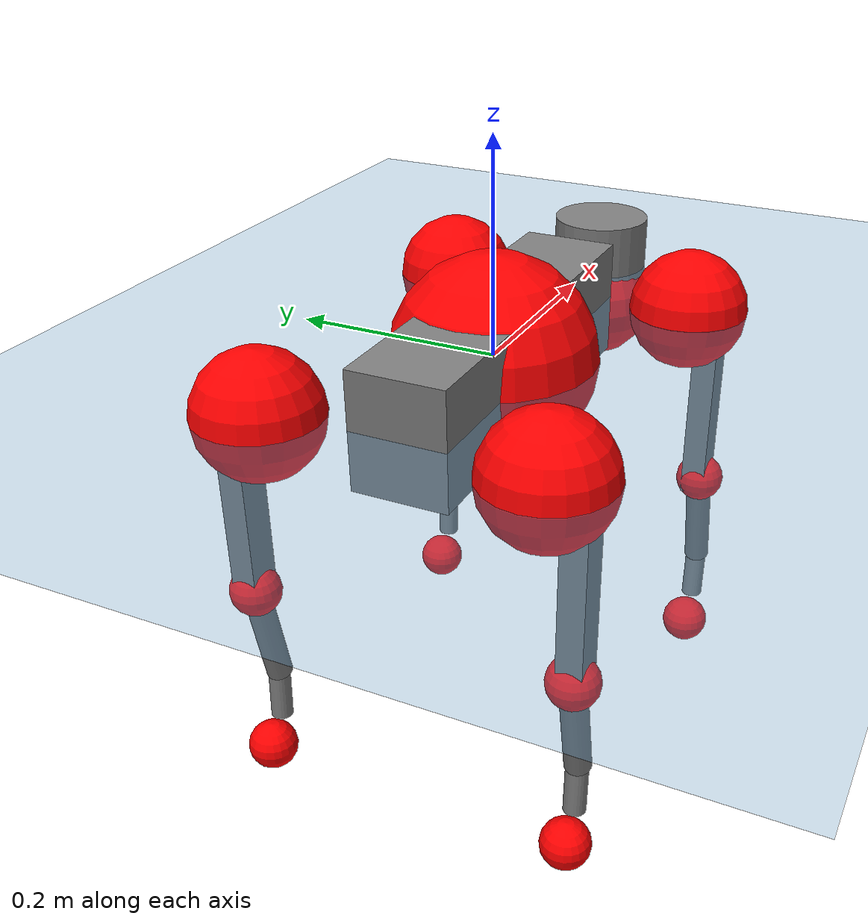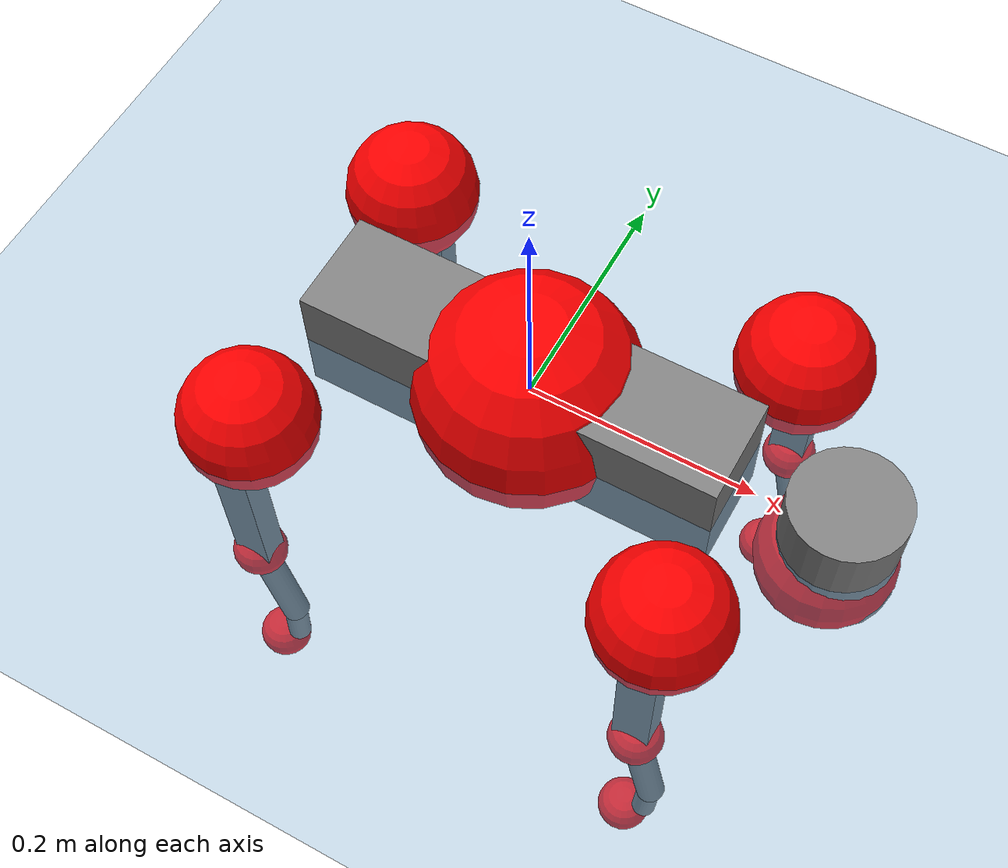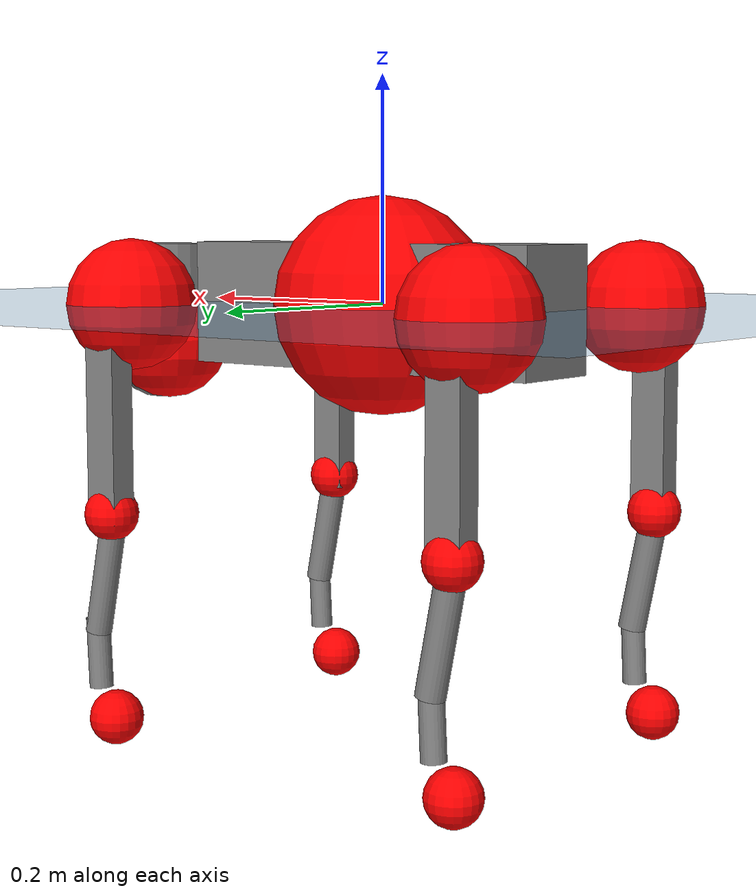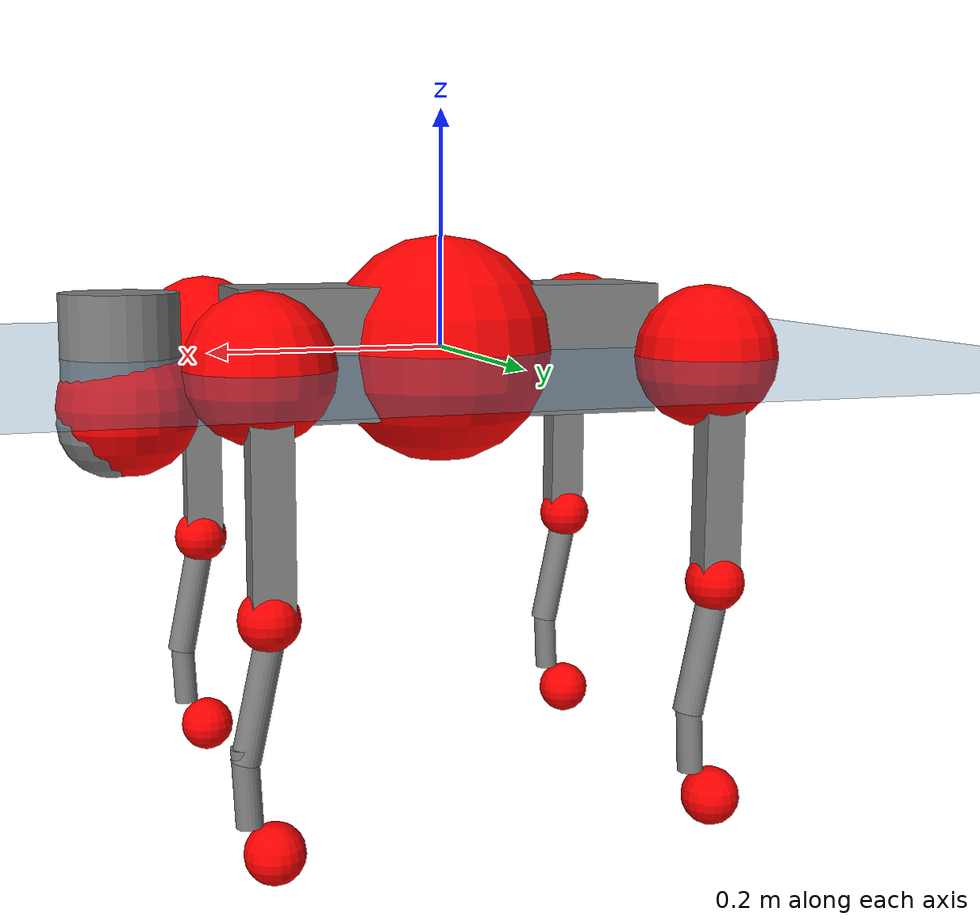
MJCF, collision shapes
<mujoco model="go2">
  <compiler angle="radian" assetdir="assets" balanceinertia="true" inertiafromgeom="false"/>

  <option timestep="0.005" density="1.2" viscosity="2e-05"/>

  <size nkey="1"/>

  <visual>
    <quality shadowsize="8192"/>
    <map shadowclip="0.5"/>
  </visual>

  <default>
    <default class="/">
      <geom contype="0" conaffinity="0" group="1" solref="-1000 -80"/>
      <site size="0.01 0.005 0.005" group="5"/>
      <general forcelimited="true" biastype="affine" gainprm="20" biasprm="0 -20 -0.5"/>
      <default class="go2">
        <joint armature="0.01" damping="0.01" frictionloss="0.2"/>
        <geom condim="1" margin="0.001"/>
        <default class="visual">
          <geom type="mesh" group="2"/>
        </default>
        <default class="collision">
          <geom group="3"/>
          <default class="foot">
            <geom size="0.022 0 0" condim="6" priority="1" friction="0.8 0.02 0.01" solimp="0.015 1 0.022"/>
          </default>
        </default>
        <default class="reward_collision_sphere">
          <geom group="5" rgba="1 0 0 1"/>
        </default>
      </default>
    </default>
  </default>

  <asset>
    <texture type="skybox" colorspace="auto" name="//unnamed_texture_0" builtin="gradient" rgb1="0.95 0.95 0.95" rgb2="0.95 0.95 0.95" width="100" height="600"/>
    <texture type="2d" colorspace="auto" name="texplane" builtin="checker" rgb1="0.345 0.575 0.748" rgb2="0.345 0.575 0.748" markrgb="1 1 1" width="512" height="512"/>
    <material name="MatPlane" class="/" texture="texplane" texuniform="true" texrepeat="2 2" specular="0.9"/>
    <material name="metal" class="/" rgba="0.9 0.95 0.95 1"/>
    <material name="black" class="/" rgba="0 0 0 1"/>
    <material name="white" class="/"/>
    <material name="gray" class="/" rgba="0.671705 0.692426 0.77427 1"/>
    <mesh name="base_0" class="/" file="base_0.obj"/>
    <mesh name="base_1" class="/" file="base_1.obj"/>
    <mesh name="base_2" class="/" file="base_2.obj"/>
    <mesh name="base_3" class="/" file="base_3.obj"/>
    <mesh name="base_4" class="/" file="base_4.obj"/>
    <mesh name="hip_0" class="/" file="hip_0.obj"/>
    <mesh name="hip_1" class="/" file="hip_1.obj"/>
    <mesh name="thigh_0" class="/" file="thigh_0.obj"/>
    <mesh name="thigh_1" class="/" file="thigh_1.obj"/>
    <mesh name="thigh_mirror_0" class="/" file="thigh_mirror_0.obj"/>
    <mesh name="thigh_mirror_1" class="/" file="thigh_mirror_1.obj"/>
    <mesh name="calf_0" class="/" file="calf_0.obj"/>
    <mesh name="calf_1" class="/" file="calf_1.obj"/>
    <mesh name="calf_mirror_0" class="/" file="calf_mirror_0.obj"/>
    <mesh name="calf_mirror_1" class="/" file="calf_mirror_1.obj"/>
    <mesh name="foot" class="/" file="foot.obj"/>
  </asset>

  <worldbody>
    <geom name="floor" class="/" size="100 100 0.125" type="plane" group="0" material="MatPlane"/>
    <light name="toplight_shadow" class="/" pos="0 0 5" dir="0.0990148 0.0990148 -0.990148" type="directional" ambient="0.04 0.04 0.04" diffuse="0.55 0.55 0.55" specular="0.12 0.12 0.12"/>
    <light name="toplight_fill" class="/" pos="0 0 5" dir="0.0990148 0.0990148 -0.990148" type="directional" castshadow="false" ambient="0.04 0.04 0.04" diffuse="0.3 0.3 0.3" specular="0.08 0.08 0.08"/>
    <body name="trunk" childclass="go2" pos="0.000182096 -0.0001216 -0.0015778" quat="1 2.0791e-05 2.48636e-05 -4.39894e-05">
      <inertial pos="0.0178235 -0.00260387 -0.00490696" quat="-0.00417801 0.71304 -0.00289382 0.701104" mass="6.34133" diaginertia="0.0858211 0.160028 0.0124972"/>
      <joint name="//unnamed_joint_0" type="free" armature="0" damping="0" frictionloss="0"/>
      <geom name="//unnamed_geom_1" class="visual" material="black" mesh="base_0"/>
      <geom name="//unnamed_geom_2" class="visual" material="black" mesh="base_1"/>
      <geom name="//unnamed_geom_3" class="visual" material="black" mesh="base_2"/>
      <geom name="//unnamed_geom_4" class="visual" material="white" mesh="base_3"/>
      <geom name="//unnamed_geom_5" class="visual" material="gray" mesh="base_4"/>
      <geom name="trunk_1" class="collision" size="0.182904 0.0454585 0.0554254" type="box"/>
      <geom name="trunk_2" class="collision" size="0.0486188 0.0437569" pos="0.271159 0 0.00869125" type="cylinder"/>
      <geom name="trunk_3" class="collision" size="0.0457016" pos="0.278771 0 -0.0521475"/>
      <geom name="//unnamed_geom_9" class="reward_collision_sphere" size="0.0972375"/>
      <geom name="//unnamed_geom_10" class="reward_collision_sphere" size="0.0583425" pos="0.266402 0 -0.0391106"/>
      <site name="imu" pos="-0.0376855 0.00227163 0.0492581" size="0.00972375"/>
      <camera name="track" pos="0 -2.19313 0" quat="0.707107 0.707107 0 0" mode="trackcom"/>
      <camera name="ego_camera" pos="0.296848 0 0.0391106" quat="-0.5 -0.5 0.5 0.5"/>
      <body name="FL_hip" pos="0.182801 0.0519665 0.000866386" quat="1 -2.01253e-05 9.03704e-06 -7.13276e-06">
        <inertial pos="-0.00255049 0.00223721 -0.000596867" quat="0.494763 0.496921 0.50747 0.500753" mass="0.599088" diaginertia="0.000662001 0.00093937 0.000233805"/>
        <joint name="FL_hip_joint" pos="0 0 0" axis="0.999911 -0.0106589 -0.00808488" stiffness="0.00712845" range="-1.05517 1.06228" armature="0.0110086" damping="0.00286721" frictionloss="0.202665"/>
        <geom name="//unnamed_geom_11" class="visual" material="metal" mesh="hip_0"/>
        <geom name="//unnamed_geom_12" class="visual" material="gray" mesh="hip_1"/>
        <geom name="//unnamed_geom_13" class="collision" size="0.0447293 0.0194475" pos="0 0.0877251 0" quat="0.707107 0.707107 0 0" type="cylinder"/>
        <geom name="//unnamed_geom_14" class="reward_collision_sphere" size="0.0583425" pos="0 0.0767595 0"/>
        <body name="FL_thigh" pos="-0.000160649 0.106536 0.00244797" quat="1 -0.000895745 4.20227e-05 -5.45458e-05">
          <inertial pos="-0.00401852 -0.0246552 -0.0257982" quat="0.830255 0.0812866 -0.02379 0.550911" mass="1.07888" diaginertia="0.00451402 0.00931288 0.000442708"/>
          <joint name="FL_thigh_joint" pos="0 0 0" axis="-0.00289983 0.999996 2.66622e-05" range="-1.5484 3.46737" armature="0.00938501" damping="0.0147605" frictionloss="0.17018"/>
          <geom name="//unnamed_geom_15" class="visual" material="metal" mesh="thigh_0"/>
          <geom name="//unnamed_geom_16" class="visual" material="gray" mesh="thigh_1"/>
          <geom name="//unnamed_geom_17" class="collision" size="0.103558 0.0119116 0.0165304" pos="0 0 -0.0925619" quat="0.707107 0 0.707107 0" type="box"/>
          <body name="FL_calf" pos="0.00169136 -0.0024372 -0.188135" quat="0.999999 -0.000472558 -0.000484578 -0.000891705">
            <inertial pos="0.00714074 -0.000300077 -0.121269" quat="0.713468 0.00172502 -0.00800069 0.70064" mass="0.218814" diaginertia="0.00115453 0.00230752 2.65008e-05"/>
            <joint name="FL_calf_joint" pos="0 0 0" axis="0.00134242 0.999997 0.00185738" stiffness="0.00223457" range="-2.75243 -0.846795" armature="0.00989981" damping="0" frictionloss="0.20613"/>
            <geom name="//unnamed_geom_18" class="visual" material="gray" mesh="calf_0"/>
            <geom name="//unnamed_geom_19" class="visual" material="black" mesh="calf_1"/>
            <geom name="FL_calf0" class="collision" size="0.0116685 0.0583425" pos="0.00761149 0 -0.0521475" quat="0.994493 0 -0.104807 0" type="cylinder"/>
            <geom name="//unnamed_geom_21" class="collision" size="0.0106961 0.0316022" pos="0.0190287 0 -0.128631" quat="0.999688 0 0.0249974 0" type="cylinder"/>
            <geom name="//unnamed_geom_22" class="visual" pos="0 0 -0.185124" quat="1 0 0 0" material="black" mesh="foot"/>
            <geom name="FL_foot" class="foot" size="0.0178628" pos="-0.00190287 0 -0.185124"/>
            <geom name="//unnamed_geom_24" class="reward_collision_sphere" size="0.0243094"/>
            <geom name="//unnamed_geom_25" class="reward_collision_sphere" size="0.0243094" pos="-0.00190287 0 -0.185124"/>
            <site name="FL_foot" class="foot" pos="-0.00190287 0 -0.185124" size="0.00972375"/>
          </body>
        </body>
      </body>
      <body name="FR_hip" pos="0.183365 -0.0502618 0.00117852" quat="1 -0.000117388 -6.78471e-05 -1.88948e-05">
        <inertial pos="-0.00253115 -0.00212942 -3.53625e-05" quat="0.498239 0.5054 0.499294 0.497025" mass="0.640363" diaginertia="0.00070018 0.000966759 0.000241748"/>
        <joint name="FR_hip_joint" pos="0 0 0" axis="0.999994 -0.00354824 -0.000308381" stiffness="0.00532755" range="-1.10115 1.04033" armature="0.00853605" damping="0.0181941" frictionloss="0.170069"/>
        <geom name="//unnamed_geom_26" class="visual" pos="0 1.98135e-09 8.49841e-08" quat="4.63268e-05 1 0 0" material="metal" mesh="hip_0"/>
        <geom name="//unnamed_geom_27" class="visual" pos="0 3.212e-09 -2.10198e-07" quat="4.63268e-05 1 0 0" material="gray" mesh="hip_1"/>
        <geom name="//unnamed_geom_28" class="collision" size="0.0447293 0.0194475" pos="0 -0.0877251 0" quat="0.707107 0.707107 0 0" type="cylinder"/>
        <geom name="//unnamed_geom_29" class="reward_collision_sphere" size="0.0583425" pos="0 -0.0767595 0"/>
        <body name="FR_thigh" pos="0.000538871 -0.101883 -0.000838126" quat="1 8.06325e-05 -6.80834e-05 -0.000293891">
          <inertial pos="-0.00346988 0.0241408 -0.0284536" quat="0.545868 -0.0284994 0.0796562 0.833589" mass="0.998821" diaginertia="0.00453167 0.00916678 0.000425125"/>
          <joint name="FR_thigh_joint" pos="0 0 0" axis="0.00888963 -0.99994 -0.00637287" stiffness="0.00287664" range="-3.43776 1.59822" armature="0.00987216" damping="0" frictionloss="0.219725"/>
          <geom name="//unnamed_geom_30" class="visual" material="metal" mesh="thigh_mirror_0"/>
          <geom name="//unnamed_geom_31" class="visual" material="gray" mesh="thigh_mirror_1"/>
          <geom name="//unnamed_geom_32" class="collision" size="0.103558 0.0119116 0.0165304" pos="0 0 -0.0925619" quat="0.707107 0 0.707107 0" type="box"/>
          <body name="FR_calf" pos="0.00232665 -0.00268389 -0.185453" quat="1 0.000203483 -3.6241e-05 -0.000119407">
            <inertial pos="0.00630092 0.000183219 -0.120483" quat="0.702264 -0.00650845 -0.00151977 0.711885" mass="0.22293" diaginertia="0.00111973 0.00225145 2.64532e-05"/>
            <joint name="FR_calf_joint" pos="0 0 0" axis="-0.00348899 -0.999993 0.0014855" range="0.818963 2.74989" armature="0.0101746" damping="0.00712288" frictionloss="0.168615"/>
            <geom name="//unnamed_geom_33" class="visual" material="gray" mesh="calf_mirror_0"/>
            <geom name="//unnamed_geom_34" class="visual" material="black" mesh="calf_mirror_1"/>
            <geom name="FR_calf0" class="collision" size="0.0126409 0.0583425" pos="0.00951436 0 -0.0521475" quat="0.995004 0 -0.0998334 0" type="cylinder"/>
            <geom name="//unnamed_geom_36" class="collision" size="0.0106961 0.0316022" pos="0.0190287 0 -0.128631" quat="0.999688 0 0.0249974 0" type="cylinder"/>
            <geom name="//unnamed_geom_37" class="visual" pos="0 0 -0.185124" quat="1 0 0 0" material="black" mesh="foot"/>
            <geom name="FR_foot" class="foot" size="0.0204003" pos="-0.00190287 0 -0.185124"/>
            <geom name="//unnamed_geom_39" class="reward_collision_sphere" size="0.0243094"/>
            <geom name="//unnamed_geom_40" class="reward_collision_sphere" size="0.0243094" pos="-0.00190287 0 -0.185124"/>
            <site name="FR_foot" class="foot" pos="-0.00190287 0 -0.185124" size="0.00972375"/>
          </body>
        </body>
      </body>
      <body name="RL_hip" pos="-0.186629 0.0513723 0.000136495" quat="1 -1.51754e-05 -1.14531e-05 -6.66331e-05">
        <inertial pos="0.00492256 0.00509975 0.00052731" quat="0.504862 0.500557 0.499201 0.495334" mass="0.619194" diaginertia="0.000675252 0.00094758 0.000223761"/>
        <joint name="RL_hip_joint" pos="0 0 0" axis="-0.999933 -0.0109677 0.00382971" stiffness="0.00441821" range="-1.06242 0.994416" armature="0.00836272" damping="0.00124395" frictionloss="0.189215"/>
        <geom name="//unnamed_geom_41" class="visual" pos="-7.17056e-10 0 -1.40559e-07" quat="4.63268e-05 0 1 0" material="metal" mesh="hip_0"/>
        <geom name="//unnamed_geom_42" class="visual" pos="-1.16243e-09 0 -1.24656e-07" quat="4.63268e-05 0 1 0" material="gray" mesh="hip_1"/>
        <geom name="//unnamed_geom_43" class="collision" size="0.0447293 0.0194475" pos="0 0.0877251 0" quat="0.707107 0.707107 0 0" type="cylinder"/>
        <geom name="//unnamed_geom_44" class="reward_collision_sphere" size="0.0583425" pos="0 0.0767595 0"/>
        <body name="RL_thigh" pos="-0.00115758 0.101402 0.000612726" quat="1 -2.63957e-07 -6.47872e-06 -9.34979e-06">
          <inertial pos="-0.00329277 -0.0219541 -0.0280454" quat="0.82937 0.0852315 -0.0214954 0.551742" mass="1.06093" diaginertia="0.00464267 0.00915948 0.000431072"/>
          <joint name="RL_thigh_joint" pos="0 0 0" axis="0.00535589 0.999946 0.00885138" stiffness="0.00913517" range="-0.521008 4.54523" armature="0.00957042" damping="0.00154285" frictionloss="0.187585"/>
          <geom name="//unnamed_geom_45" class="visual" material="metal" mesh="thigh_0"/>
          <geom name="//unnamed_geom_46" class="visual" material="gray" mesh="thigh_1"/>
          <geom name="//unnamed_geom_47" class="collision" size="0.103558 0.0119116 0.0165304" pos="0 0 -0.0925619" quat="0.707107 0 0.707107 0" type="box"/>
          <body name="RL_calf" pos="-0.000852207 -0.000996536 -0.184728" quat="1 -0.000110886 6.74528e-05 0.000313505">
            <inertial pos="0.00580672 -0.000741211 -0.123296" quat="0.703801 0.00926592 -0.00860997 0.710284" mass="0.220701" diaginertia="0.00116339 0.00230358 2.53673e-05"/>
            <joint name="RL_calf_joint" pos="0 0 0" axis="0.00655215 0.999978 0.00106835" range="-2.71865 -0.838296" armature="0.00882535" damping="0.0040203" frictionloss="0.207632"/>
            <geom name="//unnamed_geom_48" class="visual" material="gray" mesh="calf_0"/>
            <geom name="//unnamed_geom_49" class="visual" material="black" mesh="calf_1"/>
            <geom name="RL_calf0" class="collision" size="0.0126409 0.0583425" pos="0.00951436 0 -0.0521475" quat="0.995004 0 -0.0998334 0" type="cylinder"/>
            <geom name="//unnamed_geom_51" class="collision" size="0.0106961 0.0316022" pos="0.0190287 0 -0.128631" quat="0.999688 0 0.0249974 0" type="cylinder"/>
            <geom name="//unnamed_geom_52" class="visual" pos="0 0 -0.185124" quat="1 0 0 0" material="black" mesh="foot"/>
            <geom name="RL_foot" class="foot" size="0.0189274" pos="-0.00190287 0 -0.185124"/>
            <geom name="//unnamed_geom_54" class="reward_collision_sphere" size="0.0243094"/>
            <geom name="//unnamed_geom_55" class="reward_collision_sphere" size="0.0243094" pos="-0.00190287 0 -0.185124"/>
            <site name="RL_foot" class="foot" pos="-0.00190287 0 -0.185124" size="0.00972375"/>
          </body>
        </body>
      </body>
      <body name="RR_hip" pos="-0.183815 -0.0544337 -0.000275434" quat="0.999999 0.000182648 -0.000341278 0.00096552">
        <inertial pos="0.0024668 -0.00220138 0.002343" quat="0.501181 0.492875 0.497847 0.507976" mass="0.62042" diaginertia="0.000684193 0.000943273 0.000229329"/>
        <joint name="RR_hip_joint" pos="0 0 0" axis="-0.999999 -0.00160407 -0.000205448" range="-1.09178 1.0998" armature="0.0097015" damping="0" frictionloss="0.191865"/>
        <geom name="//unnamed_geom_56" class="visual" pos="7.2208e-10 1.98135e-09 -2.25543e-07" quat="2.14617e-09 4.63268e-05 4.63268e-05 -1" material="metal" mesh="hip_0"/>
        <geom name="//unnamed_geom_57" class="visual" pos="1.15001e-09 3.212e-09 8.55421e-08" quat="2.14617e-09 4.63268e-05 4.63268e-05 -1" material="gray" mesh="hip_1"/>
        <geom name="//unnamed_geom_58" class="collision" size="0.0447293 0.0194475" pos="0 -0.0877251 0" quat="0.707107 0.707107 0 0" type="cylinder"/>
        <geom name="//unnamed_geom_59" class="reward_collision_sphere" size="0.0583425" pos="0 -0.0767595 0"/>
        <body name="RR_thigh" pos="-0.000162311 -0.105628 0.0016509" quat="1 -4.04963e-05 -0.000171369 -0.000152277">
          <inertial pos="-0.00179139 0.0254992 -0.0293446" quat="0.55155 -0.0201587 0.0848711 0.829568" mass="0.989965" diaginertia="0.00435202 0.00901485 0.00041607"/>
          <joint name="RR_thigh_joint" pos="0 0 0" axis="0.00316513 -0.999843 0.017421" range="-4.52831 0.521844" armature="0.00991969" damping="0.0185535" frictionloss="0.191215"/>
          <geom name="//unnamed_geom_60" class="visual" material="metal" mesh="thigh_mirror_0"/>
          <geom name="//unnamed_geom_61" class="visual" material="gray" mesh="thigh_mirror_1"/>
          <geom name="//unnamed_geom_62" class="collision" size="0.103558 0.0119116 0.0165304" pos="0 0 -0.0925619" quat="0.707107 0 0.707107 0" type="box"/>
          <body name="RR_calf" pos="-0.00206717 0.000672987 -0.187007" quat="1 -1.36255e-05 1.45599e-05 3.35425e-05">
            <inertial pos="0.00624084 0.000913585 -0.122394" quat="0.70774 0.00552499 0.00187341 0.706449" mass="0.222255" diaginertia="0.00115652 0.00239597 2.66408e-05"/>
            <joint name="RR_calf_joint" pos="0 0 0" axis="0.00125577 -0.999989 -0.0044843" stiffness="0.00787939" range="0.850008 2.74493" armature="0.00841264" damping="0.00652441" frictionloss="0.194431"/>
            <geom name="//unnamed_geom_63" class="visual" material="gray" mesh="calf_mirror_0"/>
            <geom name="//unnamed_geom_64" class="visual" material="black" mesh="calf_mirror_1"/>
            <geom name="RR_calf0" class="collision" size="0.0126409 0.0583425" pos="0.00951436 0 -0.0521475" quat="0.995004 0 -0.0998334 0" type="cylinder"/>
            <geom name="//unnamed_geom_66" class="collision" size="0.0106961 0.0316022" pos="0.0190287 0 -0.128631" quat="0.999688 0 0.0249974 0" type="cylinder"/>
            <geom name="//unnamed_geom_67" class="visual" pos="0 0 -0.185124" quat="1 0 0 0" material="black" mesh="foot"/>
            <geom name="RR_foot" class="foot" size="0.0208315" pos="-0.00190287 0 -0.185124"/>
            <geom name="//unnamed_geom_69" class="reward_collision_sphere" size="0.0243094"/>
            <geom name="//unnamed_geom_70" class="reward_collision_sphere" size="0.0243094" pos="-0.00190287 0 -0.185124"/>
            <site name="RR_foot" class="foot" pos="-0.00190287 0 -0.185124" size="0.00972375"/>
          </body>
        </body>
      </body>
    </body>
  </worldbody>

  <contact>
    <pair class="/" geom1="floor" geom2="FL_foot" name="//unnamed_contact_0"/>
    <pair class="/" geom1="floor" geom2="FR_foot" name="//unnamed_contact_1"/>
    <pair class="/" geom1="floor" geom2="RL_foot" name="//unnamed_contact_2"/>
    <pair class="/" geom1="floor" geom2="RR_foot" name="//unnamed_contact_3"/>
  </contact>

  <actuator>
    <general name="FL_hip" class="/" joint="FL_hip_joint" forcerange="-23.6138 23.6138" gainprm="19.0157" biasprm="0 -19.0157 -0.499395"/>
    <general name="FL_thigh" class="/" joint="FL_thigh_joint" forcerange="-22.3484 22.3484" gainprm="19.0157" biasprm="0 -19.0157 -0.499395"/>
    <general name="FL_calf" class="/" joint="FL_calf_joint" forcerange="-45.7568 45.7568" gainprm="19.0157" biasprm="0 -19.0157 -0.499395"/>
    <general name="FR_hip" class="/" joint="FR_hip_joint" forcerange="-22.0638 22.0638" gainprm="19.0157" biasprm="0 -19.0157 -0.499395"/>
    <general name="FR_thigh" class="/" joint="FR_thigh_joint" forcerange="-23.027 23.027" gainprm="19.0157" biasprm="0 -19.0157 -0.499395"/>
    <general name="FR_calf" class="/" joint="FR_calf_joint" forcerange="-39.8461 39.8461" gainprm="19.0157" biasprm="0 -19.0157 -0.499395"/>
    <general name="RL_hip" class="/" joint="RL_hip_joint" forcerange="-22.9744 22.9744" gainprm="19.0157" biasprm="0 -19.0157 -0.499395"/>
    <general name="RL_thigh" class="/" joint="RL_thigh_joint" forcerange="-20.9309 20.9309" gainprm="19.0157" biasprm="0 -19.0157 -0.499395"/>
    <general name="RL_calf" class="/" joint="RL_calf_joint" forcerange="-45.8944 45.8944" gainprm="19.0157" biasprm="0 -19.0157 -0.499395"/>
    <general name="RR_hip" class="/" joint="RR_hip_joint" forcerange="-23.7101 23.7101" gainprm="19.0157" biasprm="0 -19.0157 -0.499395"/>
    <general name="RR_thigh" class="/" joint="RR_thigh_joint" forcerange="-20.7187 20.7187" gainprm="19.0157" biasprm="0 -19.0157 -0.499395"/>
    <general name="RR_calf" class="/" joint="RR_calf_joint" forcerange="-48.2575 48.2575" gainprm="19.0157" biasprm="0 -19.0157 -0.499395"/>
  </actuator>

  <sensor>
    <gyro site="imu" name="imu_angular_velocity"/>
    <velocimeter site="imu" name="imu_linear_velocity"/>
    <framelinvel objtype="site" objname="FL_foot" name="FL_foot_global_linear_velocity"/>
    <framelinvel objtype="site" objname="FR_foot" name="FR_foot_global_linear_velocity"/>
    <framelinvel objtype="site" objname="RL_foot" name="RL_foot_global_linear_velocity"/>
    <framelinvel objtype="site" objname="RR_foot" name="RR_foot_global_linear_velocity"/>
  </sensor>

  <keyframe>
    <key name="home" qpos="0 0 0.325 1 0 0 0 0.1 0.8 -1.5 -0.1 -0.8 1.5 -0.1 0.8 -1.5 0.1 -0.8 1.5"/>
  </keyframe>
</mujoco>
